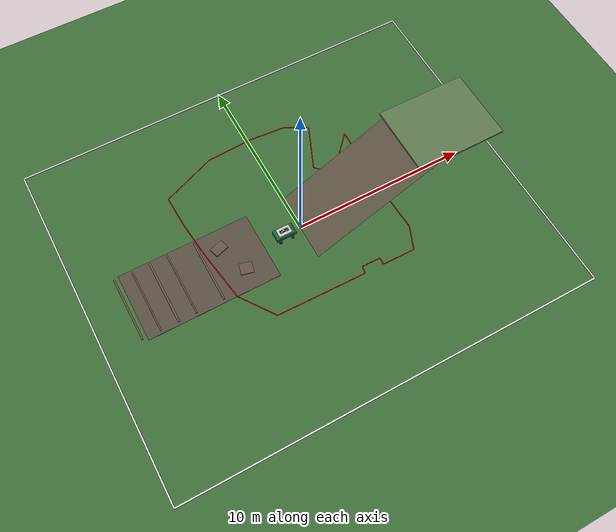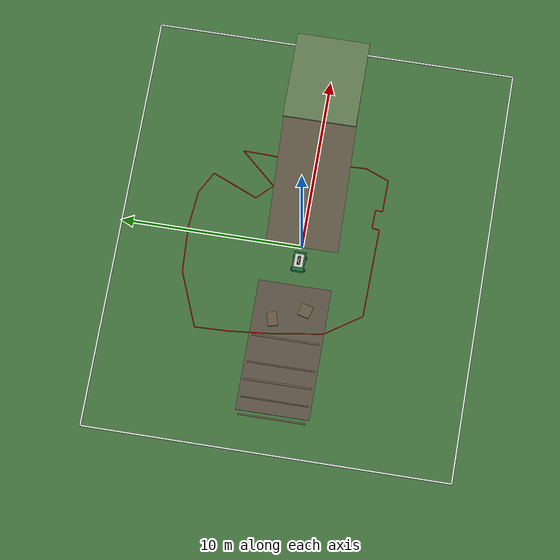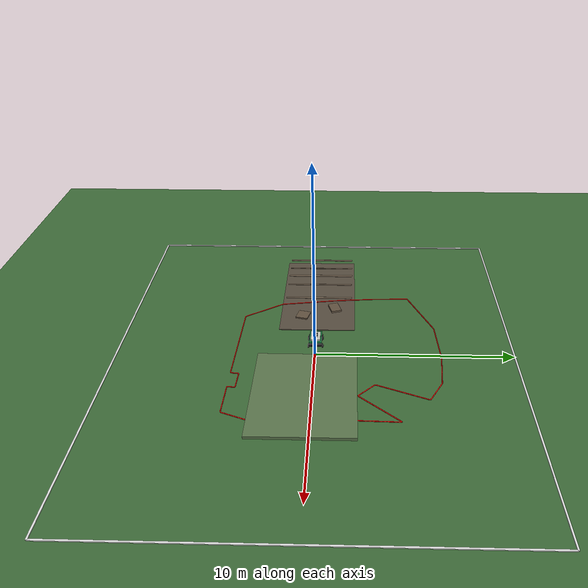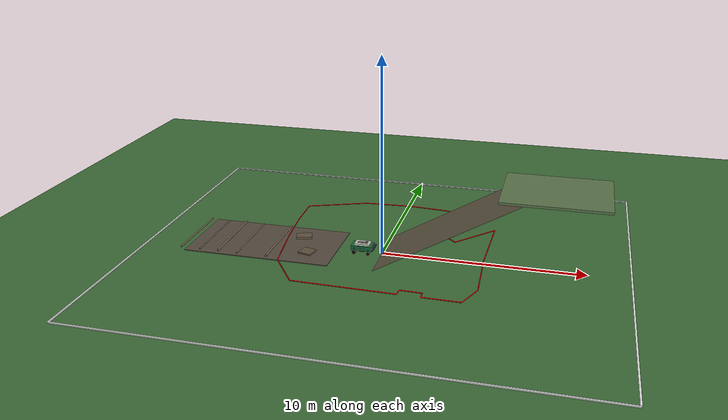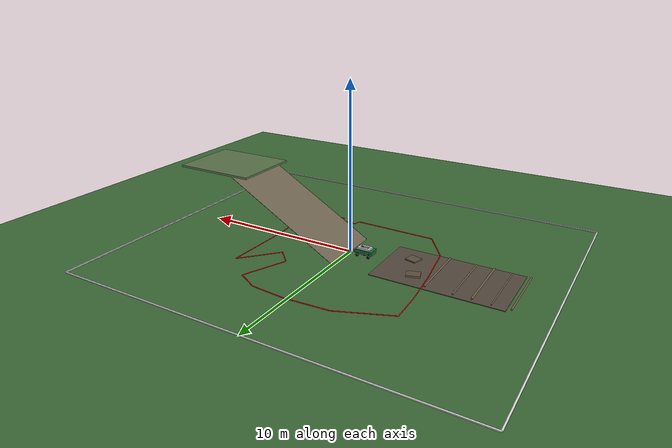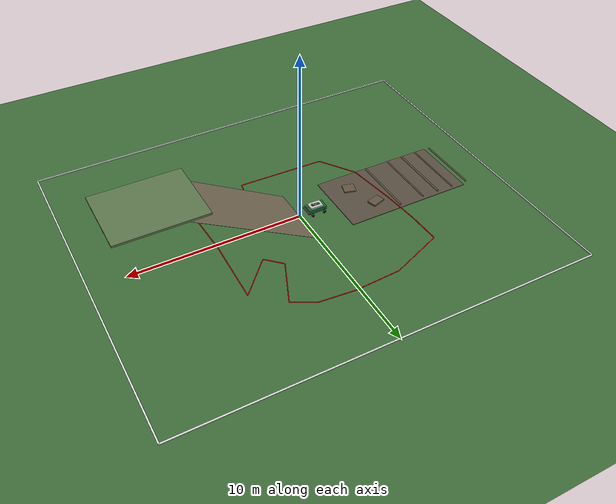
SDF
<?xml version="1.0"?>
<sdf version="1.6">
  <world name="mower_slope_bumpy">
    <gravity>0 0 -9.8</gravity>
    <magnetic_field>6e-06 2.3e-05 -4.2e-05</magnetic_field>
    <atmosphere type="adiabatic"/>

    <physics name="default_physics" default="0" type="ode">
      <max_step_size>0.001</max_step_size>
      <real_time_factor>1.0</real_time_factor>
      <real_time_update_rate>1000</real_time_update_rate>
    </physics>

    <scene>
      <ambient>0.65 0.65 0.65 1</ambient>
      <background>0.85 0.90 0.96 1</background>
      <shadows>true</shadows>
    </scene>

    <light name="sun" type="directional">
      <cast_shadows>true</cast_shadows>
      <pose>0 0 10 0 0 0</pose>
      <diffuse>1.0 1.0 1.0 1</diffuse>
      <specular>0.35 0.35 0.35 1</specular>
      <attenuation>
        <range>1000</range>
        <constant>0.9</constant>
        <linear>0.01</linear>
        <quadratic>0.001</quadratic>
      </attenuation>
      <direction>-0.5 0.1 -0.9</direction>
    </light>

    <model name="ground_plane">
      <static>true</static>
      <link name="link">
        <collision name="collision">
          <geometry>
            <plane>
              <normal>0 0 1</normal>
              <size>50 40</size>
            </plane>
          </geometry>
          <surface>
            <friction>
              <ode>
                <mu>1.2</mu>
                <mu2>1.2</mu2>
              </ode>
            </friction>
          </surface>
        </collision>
        <visual name="visual">
          <geometry>
            <plane>
              <normal>0 0 1</normal>
              <size>50 40</size>
            </plane>
          </geometry>
          <material>
            <ambient>0.24 0.42 0.22 1</ambient>
            <diffuse>0.24 0.42 0.22 1</diffuse>
          </material>
        </visual>
      </link>
    </model>

    <model name="bumpy_road">
      <static>true</static>
      <pose>-6 0 0 0 0 0</pose>
      <link name="road_base">
        <collision name="collision">
          <geometry>
            <box>
              <size>7.5 4.0 0.04</size>
            </box>
          </geometry>
        </collision>
        <visual name="visual">
          <geometry>
            <box>
              <size>7.5 4.0 0.04</size>
            </box>
          </geometry>
          <material>
            <ambient>0.34 0.30 0.25 1</ambient>
            <diffuse>0.34 0.30 0.25 1</diffuse>
          </material>
        </visual>
      </link>
      <link name="bump_01">
        <pose>-4.0 0 0.09 1.570796 0 0</pose>
        <collision name="collision">
          <geometry>
            <cylinder>
              <radius>0.045</radius>
              <length>3.7</length>
            </cylinder>
          </geometry>
        </collision>
        <visual name="visual">
          <geometry>
            <cylinder>
              <radius>0.045</radius>
              <length>3.7</length>
            </cylinder>
          </geometry>
          <material>
            <ambient>0.42 0.36 0.29 1</ambient>
            <diffuse>0.42 0.36 0.29 1</diffuse>
          </material>
        </visual>
      </link>
      <link name="bump_02">
        <pose>-3.0 0 0.07 1.570796 0 0</pose>
        <collision name="collision">
          <geometry>
            <cylinder>
              <radius>0.035</radius>
              <length>3.7</length>
            </cylinder>
          </geometry>
        </collision>
        <visual name="visual">
          <geometry>
            <cylinder>
              <radius>0.035</radius>
              <length>3.7</length>
            </cylinder>
          </geometry>
          <material>
            <ambient>0.42 0.36 0.29 1</ambient>
            <diffuse>0.42 0.36 0.29 1</diffuse>
          </material>
        </visual>
      </link>
      <link name="bump_03">
        <pose>-2.0 0 0.11 1.570796 0 0</pose>
        <collision name="collision">
          <geometry>
            <cylinder>
              <radius>0.055</radius>
              <length>3.7</length>
            </cylinder>
          </geometry>
        </collision>
        <visual name="visual">
          <geometry>
            <cylinder>
              <radius>0.055</radius>
              <length>3.7</length>
            </cylinder>
          </geometry>
          <material>
            <ambient>0.42 0.36 0.29 1</ambient>
            <diffuse>0.42 0.36 0.29 1</diffuse>
          </material>
        </visual>
      </link>
      <link name="bump_04">
        <pose>-1.0 0 0.08 1.570796 0 0</pose>
        <collision name="collision">
          <geometry>
            <cylinder>
              <radius>0.04</radius>
              <length>3.7</length>
            </cylinder>
          </geometry>
        </collision>
        <visual name="visual">
          <geometry>
            <cylinder>
              <radius>0.04</radius>
              <length>3.7</length>
            </cylinder>
          </geometry>
          <material>
            <ambient>0.42 0.36 0.29 1</ambient>
            <diffuse>0.42 0.36 0.29 1</diffuse>
          </material>
        </visual>
      </link>
      <link name="bump_05">
        <pose>0.55 0 0.10 1.570796 0 0</pose>
        <collision name="collision">
          <geometry>
            <cylinder>
              <radius>0.05</radius>
              <length>3.7</length>
            </cylinder>
          </geometry>
        </collision>
        <visual name="visual">
          <geometry>
            <cylinder>
              <radius>0.05</radius>
              <length>3.7</length>
            </cylinder>
          </geometry>
          <material>
            <ambient>0.42 0.36 0.29 1</ambient>
            <diffuse>0.42 0.36 0.29 1</diffuse>
          </material>
        </visual>
      </link>
      <link name="small_uneven_patch_left">
        <pose>1.6 0.9 0.075 0 0 0.3</pose>
        <collision name="collision">
          <geometry>
            <box>
              <size>0.8 0.55 0.11</size>
            </box>
          </geometry>
        </collision>
        <visual name="visual">
          <geometry>
            <box>
              <size>0.8 0.55 0.11</size>
            </box>
          </geometry>
          <material>
            <ambient>0.38 0.32 0.25 1</ambient>
            <diffuse>0.38 0.32 0.25 1</diffuse>
          </material>
        </visual>
      </link>
      <link name="small_uneven_patch_right">
        <pose>2.35 -0.8 0.06 0 0 -0.25</pose>
        <collision name="collision">
          <geometry>
            <box>
              <size>0.7 0.65 0.08</size>
            </box>
          </geometry>
        </collision>
        <visual name="visual">
          <geometry>
            <box>
              <size>0.7 0.65 0.08</size>
            </box>
          </geometry>
          <material>
            <ambient>0.38 0.32 0.25 1</ambient>
            <diffuse>0.38 0.32 0.25 1</diffuse>
          </material>
        </visual>
      </link>
    </model>

    <model name="thirty_degree_slope">
      <static>true</static>
      <pose>3.464 0 1.99 0 -0.523599 0</pose>
      <link name="ramp">
        <collision name="collision">
          <geometry>
            <box>
              <size>8.0 4.0 0.01</size>
            </box>
          </geometry>
          <surface>
            <friction>
              <ode>
                <mu>1.4</mu>
                <mu2>1.4</mu2>
              </ode>
            </friction>
          </surface>
        </collision>
        <visual name="visual">
          <geometry>
            <box>
              <size>8.0 4.0 0.01</size>
            </box>
          </geometry>
          <material>
            <ambient>0.43 0.39 0.31 1</ambient>
            <diffuse>0.43 0.39 0.31 1</diffuse>
          </material>
        </visual>
      </link>
    </model>

    <model name="slope_top_platform">
      <static>true</static>
      <pose>8.3 0 4.05 0 0 0</pose>
      <link name="platform">
        <collision name="collision">
          <geometry>
            <box>
              <size>5.0 4.0 0.12</size>
            </box>
          </geometry>
          <surface>
            <friction>
              <ode>
                <mu>1.4</mu>
                <mu2>1.4</mu2>
              </ode>
            </friction>
          </surface>
        </collision>
        <visual name="visual">
          <geometry>
            <box>
              <size>5.0 4.0 0.12</size>
            </box>
          </geometry>
          <material>
            <ambient>0.36 0.46 0.30 1</ambient>
            <diffuse>0.36 0.46 0.30 1</diffuse>
          </material>
        </visual>
      </link>
    </model>

    <model name="boundary">
      <static>true</static>
      <pose>0 0 0.025 0 0 0</pose>
      <link name="north">
        <pose>0 10 0 0 0 0</pose>
        <collision name="collision">
          <geometry>
            <box>
              <size>24 0.08 0.05</size>
            </box>
          </geometry>
        </collision>
        <visual name="visual">
          <geometry>
            <box>
              <size>24 0.08 0.05</size>
            </box>
          </geometry>
          <material>
            <ambient>0.9 0.9 0.9 1</ambient>
            <diffuse>0.9 0.9 0.9 1</diffuse>
          </material>
        </visual>
      </link>
      <link name="south">
        <pose>0 -10 0 0 0 0</pose>
        <collision name="collision">
          <geometry>
            <box>
              <size>24 0.08 0.05</size>
            </box>
          </geometry>
        </collision>
        <visual name="visual">
          <geometry>
            <box>
              <size>24 0.08 0.05</size>
            </box>
          </geometry>
          <material>
            <ambient>0.9 0.9 0.9 1</ambient>
            <diffuse>0.9 0.9 0.9 1</diffuse>
          </material>
        </visual>
      </link>
      <link name="east">
        <pose>12 0 0 0 0 0</pose>
        <collision name="collision">
          <geometry>
            <box>
              <size>0.08 20 0.05</size>
            </box>
          </geometry>
        </collision>
        <visual name="visual">
          <geometry>
            <box>
              <size>0.08 20 0.05</size>
            </box>
          </geometry>
          <material>
            <ambient>0.9 0.9 0.9 1</ambient>
            <diffuse>0.9 0.9 0.9 1</diffuse>
          </material>
        </visual>
      </link>
      <link name="west">
        <pose>-12 0 0 0 0 0</pose>
        <collision name="collision">
          <geometry>
            <box>
              <size>0.08 20 0.05</size>
            </box>
          </geometry>
        </collision>
        <visual name="visual">
          <geometry>
            <box>
              <size>0.08 20 0.05</size>
            </box>
          </geometry>
          <material>
            <ambient>0.9 0.9 0.9 1</ambient>
            <diffuse>0.9 0.9 0.9 1</diffuse>
          </material>
        </visual>
      </link>
    </model>

    <include>
      <uri>model://boundary_points</uri>
      <pose>0 0 0 0 0 0</pose>
    </include>

    <include>
      <uri>model://ackermann_4wd_robot</uri>
      <pose>-1.0 0 0.14 0 0 0</pose>
    </include>
  </world>
</sdf>

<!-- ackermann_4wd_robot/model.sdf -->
<sdf version="1.6">
  <model name="ackermann_4wd_robot">
    <pose>0 0 0 0 0 0</pose>

    <link name="base_link">
      <inertial>
        <pose>-0.15 0 0 0 0 0</pose>
        <mass>36.0</mass>
        <inertia>
          <ixx>1.45</ixx>
          <ixy>0.0</ixy>
          <ixz>0.0</ixz>
          <iyy>2.10</iyy>
          <iyz>0.0</iyz>
          <izz>2.60</izz>
        </inertia>
      </inertial>
      <collision name="body_collision">
        <pose>0 0 0.14 0 0 0</pose>
        <geometry>
          <box>
            <size>1.08 0.62 0.24</size>
          </box>
        </geometry>
        <surface>
          <friction>
            <ode>
              <mu>1.0</mu>
              <mu2>1.0</mu2>
            </ode>
          </friction>
        </surface>
      </collision>
      <visual name="body_visual">
        <pose>0 0 0.14 0 0 0</pose>
        <geometry>
          <box>
            <size>1.08 0.62 0.24</size>
          </box>
        </geometry>
        <material>
          <ambient>0.05 0.26 0.16 1</ambient>
          <diffuse>0.08 0.42 0.22 1</diffuse>
          <specular>0.10 0.10 0.10 1</specular>
        </material>
      </visual>
      <visual name="top_cover">
        <pose>0.02 0 0.31 0 0 0</pose>
        <geometry>
          <box>
            <size>0.76 0.48 0.10</size>
          </box>
        </geometry>
        <material>
          <ambient>0.76 0.78 0.72 1</ambient>
          <diffuse>0.76 0.78 0.72 1</diffuse>
        </material>
      </visual>
      <visual name="ackermann_top_label">
        <pose>0.02 0 0.365 0 0 0</pose>
        <geometry>
          <box>
            <size>0.50 0.18 0.012</size>
          </box>
        </geometry>
        <material>
          <ambient>0.02 0.02 0.02 1</ambient>
          <diffuse>0.02 0.02 0.02 1</diffuse>
        </material>
      </visual>
      <visual name="ackermann_top_mark_left">
        <pose>-0.075 0.0 0.374 0 0 0.50</pose>
        <geometry>
          <box>
            <size>0.22 0.035 0.012</size>
          </box>
        </geometry>
        <material>
          <ambient>0.95 0.95 0.95 1</ambient>
          <diffuse>0.95 0.95 0.95 1</diffuse>
        </material>
      </visual>
      <visual name="ackermann_top_mark_right">
        <pose>0.075 0.0 0.374 0 0 -0.50</pose>
        <geometry>
          <box>
            <size>0.22 0.035 0.012</size>
          </box>
        </geometry>
        <material>
          <ambient>0.95 0.95 0.95 1</ambient>
          <diffuse>0.95 0.95 0.95 1</diffuse>
        </material>
      </visual>
      <visual name="ackermann_top_mark_crossbar">
        <pose>0.0 0.0 0.376 0 0 0</pose>
        <geometry>
          <box>
            <size>0.13 0.030 0.012</size>
          </box>
        </geometry>
        <material>
          <ambient>0.95 0.95 0.95 1</ambient>
          <diffuse>0.95 0.95 0.95 1</diffuse>
        </material>
      </visual>
      <visual name="left_ackermann_badge">
        <pose>0.04 0.315 0.18 1.5708 0 0</pose>
        <geometry>
          <box>
            <size>0.36 0.012 0.08</size>
          </box>
        </geometry>
        <material>
          <ambient>0.02 0.02 0.02 1</ambient>
          <diffuse>0.02 0.02 0.02 1</diffuse>
        </material>
      </visual>
      <visual name="right_ackermann_badge">
        <pose>0.04 -0.315 0.18 1.5708 0 0</pose>
        <geometry>
          <box>
            <size>0.36 0.012 0.08</size>
          </box>
        </geometry>
        <material>
          <ambient>0.02 0.02 0.02 1</ambient>
          <diffuse>0.02 0.02 0.02 1</diffuse>
        </material>
      </visual>
      <visual name="front_bumper">
        <pose>0.58 0 0.14 0 0 0</pose>
        <geometry>
          <box>
            <size>0.08 0.70 0.12</size>
          </box>
        </geometry>
        <material>
          <ambient>0.04 0.04 0.04 1</ambient>
          <diffuse>0.06 0.06 0.06 1</diffuse>
        </material>
      </visual>
      <visual name="cutting_disc">
        <pose>-0.02 0 -0.035 0 0 0</pose>
        <geometry>
          <cylinder>
            <radius>0.25</radius>
            <length>0.025</length>
          </cylinder>
        </geometry>
        <material>
          <ambient>0.14 0.14 0.14 1</ambient>
          <diffuse>0.16 0.16 0.16 1</diffuse>
        </material>
      </visual>
    </link>

    <link name="front_left_steer_link">
      <pose>0.36 0.32 0.02 0 0 0</pose>
      <inertial>
        <mass>0.7</mass>
        <inertia>
          <ixx>0.002</ixx>
          <ixy>0.0</ixy>
          <ixz>0.0</ixz>
          <iyy>0.002</iyy>
          <iyz>0.0</iyz>
          <izz>0.002</izz>
        </inertia>
      </inertial>
      <visual name="upright">
        <geometry>
          <box>
            <size>0.08 0.08 0.16</size>
          </box>
        </geometry>
        <material>
          <ambient>0.18 0.18 0.18 1</ambient>
          <diffuse>0.22 0.22 0.22 1</diffuse>
        </material>
      </visual>
    </link>

    <link name="front_right_steer_link">
      <pose>0.36 -0.32 0.02 0 0 0</pose>
      <inertial>
        <mass>0.7</mass>
        <inertia>
          <ixx>0.002</ixx>
          <ixy>0.0</ixy>
          <ixz>0.0</ixz>
          <iyy>0.002</iyy>
          <iyz>0.0</iyz>
          <izz>0.002</izz>
        </inertia>
      </inertial>
      <visual name="upright">
        <geometry>
          <box>
            <size>0.08 0.08 0.16</size>
          </box>
        </geometry>
        <material>
          <ambient>0.18 0.18 0.18 1</ambient>
          <diffuse>0.22 0.22 0.22 1</diffuse>
        </material>
      </visual>
    </link>

    <link name="front_left_wheel">
      <pose>0.36 0.36 -0.055 0 0 0</pose>
      <inertial>
        <mass>1.6</mass>
        <inertia>
          <ixx>0.008</ixx>
          <ixy>0.0</ixy>
          <ixz>0.0</ixz>
          <iyy>0.008</iyy>
          <iyz>0.0</iyz>
          <izz>0.012</izz>
        </inertia>
      </inertial>
      <collision name="collision">
        <pose>0 0 0 -1.5708 0 0</pose>
        <geometry>
          <cylinder>
            <radius>0.085</radius>
            <length>0.08</length>
          </cylinder>
        </geometry>
        <surface>
          <friction>
            <ode>
              <mu>1.5</mu>
              <mu2>1.5</mu2>
              <slip1>0.0</slip1>
              <slip2>0.0</slip2>
            </ode>
          </friction>
        </surface>
      </collision>
      <visual name="visual">
        <pose>0 0 0 -1.5708 0 0</pose>
        <geometry>
          <cylinder>
            <radius>0.085</radius>
            <length>0.08</length>
          </cylinder>
        </geometry>
        <material>
          <ambient>0.02 0.02 0.02 1</ambient>
          <diffuse>0.02 0.02 0.02 1</diffuse>
        </material>
      </visual>
    </link>

    <link name="front_right_wheel">
      <pose>0.36 -0.36 -0.055 0 0 0</pose>
      <inertial>
        <mass>1.6</mass>
        <inertia>
          <ixx>0.008</ixx>
          <ixy>0.0</ixy>
          <ixz>0.0</ixz>
          <iyy>0.008</iyy>
          <iyz>0.0</iyz>
          <izz>0.012</izz>
        </inertia>
      </inertial>
      <collision name="collision">
        <pose>0 0 0 -1.5708 0 0</pose>
        <geometry>
          <cylinder>
            <radius>0.085</radius>
            <length>0.08</length>
          </cylinder>
        </geometry>
        <surface>
          <friction>
            <ode>
              <mu>1.5</mu>
              <mu2>1.5</mu2>
              <slip1>0.0</slip1>
              <slip2>0.0</slip2>
            </ode>
          </friction>
        </surface>
      </collision>
      <visual name="visual">
        <pose>0 0 0 -1.5708 0 0</pose>
        <geometry>
          <cylinder>
            <radius>0.085</radius>
            <length>0.08</length>
          </cylinder>
        </geometry>
        <material>
          <ambient>0.02 0.02 0.02 1</ambient>
          <diffuse>0.02 0.02 0.02 1</diffuse>
        </material>
      </visual>
    </link>

    <link name="rear_left_suspension_link">
      <pose>-0.36 0.36 -0.02 0 0 0</pose>
      <inertial>
        <mass>0.8</mass>
        <inertia>
          <ixx>0.003</ixx>
          <ixy>0.0</ixy>
          <ixz>0.0</ixz>
          <iyy>0.003</iyy>
          <iyz>0.0</iyz>
          <izz>0.003</izz>
        </inertia>
      </inertial>
      <visual name="suspension_upright">
        <pose>0 -0.03 0.08 0 0 0</pose>
        <geometry>
          <box>
            <size>0.08 0.05 0.18</size>
          </box>
        </geometry>
        <material>
          <ambient>0.18 0.18 0.18 1</ambient>
          <diffuse>0.22 0.22 0.22 1</diffuse>
        </material>
      </visual>
      <visual name="spring_body">
        <pose>0 -0.03 0.10 0 0 0</pose>
        <geometry>
          <cylinder>
            <radius>0.025</radius>
            <length>0.20</length>
          </cylinder>
        </geometry>
        <material>
          <ambient>0.08 0.08 0.08 1</ambient>
          <diffuse>0.10 0.10 0.10 1</diffuse>
        </material>
      </visual>
    </link>

    <link name="rear_right_suspension_link">
      <pose>-0.36 -0.36 -0.02 0 0 0</pose>
      <inertial>
        <mass>0.8</mass>
        <inertia>
          <ixx>0.003</ixx>
          <ixy>0.0</ixy>
          <ixz>0.0</ixz>
          <iyy>0.003</iyy>
          <iyz>0.0</iyz>
          <izz>0.003</izz>
        </inertia>
      </inertial>
      <visual name="suspension_upright">
        <pose>0 0.03 0.08 0 0 0</pose>
        <geometry>
          <box>
            <size>0.08 0.05 0.18</size>
          </box>
        </geometry>
        <material>
          <ambient>0.18 0.18 0.18 1</ambient>
          <diffuse>0.22 0.22 0.22 1</diffuse>
        </material>
      </visual>
      <visual name="spring_body">
        <pose>0 0.03 0.10 0 0 0</pose>
        <geometry>
          <cylinder>
            <radius>0.025</radius>
            <length>0.20</length>
          </cylinder>
        </geometry>
        <material>
          <ambient>0.08 0.08 0.08 1</ambient>
          <diffuse>0.10 0.10 0.10 1</diffuse>
        </material>
      </visual>
    </link>

    <link name="rear_left_wheel">
      <pose>-0.36 0.36 -0.04 0 0 0</pose>
      <inertial>
        <mass>1.6</mass>
        <inertia>
          <ixx>0.008</ixx>
          <ixy>0.0</ixy>
          <ixz>0.0</ixz>
          <iyy>0.008</iyy>
          <iyz>0.0</iyz>
          <izz>0.012</izz>
        </inertia>
      </inertial>
      <collision name="collision">
        <pose>0 0 0 -1.5708 0 0</pose>
        <geometry>
          <cylinder>
            <radius>0.10</radius>
            <length>0.08</length>
          </cylinder>
        </geometry>
        <surface>
          <friction>
            <ode>
              <mu>1.5</mu>
              <mu2>1.5</mu2>
              <slip1>0.0</slip1>
              <slip2>0.0</slip2>
            </ode>
          </friction>
        </surface>
      </collision>
      <visual name="visual">
        <pose>0 0 0 -1.5708 0 0</pose>
        <geometry>
          <cylinder>
            <radius>0.10</radius>
            <length>0.08</length>
          </cylinder>
        </geometry>
        <material>
          <ambient>0.02 0.02 0.02 1</ambient>
          <diffuse>0.02 0.02 0.02 1</diffuse>
        </material>
      </visual>
    </link>

    <link name="rear_right_wheel">
      <pose>-0.36 -0.36 -0.04 0 0 0</pose>
      <inertial>
        <mass>1.6</mass>
        <inertia>
          <ixx>0.008</ixx>
          <ixy>0.0</ixy>
          <ixz>0.0</ixz>
          <iyy>0.008</iyy>
          <iyz>0.0</iyz>
          <izz>0.012</izz>
        </inertia>
      </inertial>
      <collision name="collision">
        <pose>0 0 0 -1.5708 0 0</pose>
        <geometry>
          <cylinder>
            <radius>0.10</radius>
            <length>0.08</length>
          </cylinder>
        </geometry>
        <surface>
          <friction>
            <ode>
              <mu>1.5</mu>
              <mu2>1.5</mu2>
              <slip1>0.0</slip1>
              <slip2>0.0</slip2>
            </ode>
          </friction>
        </surface>
      </collision>
      <visual name="visual">
        <pose>0 0 0 -1.5708 0 0</pose>
        <geometry>
          <cylinder>
            <radius>0.10</radius>
            <length>0.08</length>
          </cylinder>
        </geometry>
        <material>
          <ambient>0.02 0.02 0.02 1</ambient>
          <diffuse>0.02 0.02 0.02 1</diffuse>
        </material>
      </visual>
    </link>

    <link name="camera_link">
      <pose>0.50 0.0 0.30 0 0 0</pose>
      <inertial>
        <mass>0.08</mass>
        <inertia>
          <ixx>0.0002</ixx>
          <ixy>0.0</ixy>
          <ixz>0.0</ixz>
          <iyy>0.0002</iyy>
          <iyz>0.0</iyz>
          <izz>0.0002</izz>
        </inertia>
      </inertial>
      <visual name="camera_housing">
        <geometry>
          <box>
            <size>0.05 0.04 0.03</size>
          </box>
        </geometry>
        <material>
          <ambient>0.10 0.10 0.10 1</ambient>
          <diffuse>0.12 0.12 0.12 1</diffuse>
        </material>
      </visual>
      <sensor type="ray" name="front_tof">
        <always_on>true</always_on>
        <update_rate>20</update_rate>
        <visualize>false</visualize>
        <ray>
          <scan>
            <horizontal>
              <samples>100</samples>
              <resolution>1.0</resolution>
              <min_angle>-0.785</min_angle>
              <max_angle>0.785</max_angle>
            </horizontal>
            <vertical>
              <samples>80</samples>
              <resolution>1.0</resolution>
              <min_angle>-0.611</min_angle>
              <max_angle>0.611</max_angle>
            </vertical>
          </scan>
          <range>
            <min>0.05</min>
            <max>2.5</max>
            <resolution>0.05</resolution>
          </range>
        </ray>
        <plugin name="front_tof_controller" filename="libgazebo_ros_ray_sensor.so">
          <ros>
            <namespace>/mower_tof</namespace>
            <remapping>~/out:=points</remapping>
          </ros>
          <output_type>sensor_msgs/PointCloud2</output_type>
          <frame_name>camera_link</frame_name>
        </plugin>
      </sensor>
    </link>

    <link name="lidar_link">
      <pose>0.23 0.0 0.42 0 0.0872665 0</pose>
      <inertial>
        <mass>0.18</mass>
        <inertia>
          <ixx>0.0003</ixx>
          <ixy>0.0</ixy>
          <ixz>0.0</ixz>
          <iyy>0.0003</iyy>
          <iyz>0.0</iyz>
          <izz>0.0003</izz>
        </inertia>
      </inertial>
      <visual name="lidar_housing">
        <geometry>
          <cylinder>
            <radius>0.045</radius>
            <length>0.04</length>
          </cylinder>
        </geometry>
        <material>
          <ambient>0.02 0.02 0.02 1</ambient>
          <diffuse>0.03 0.03 0.03 1</diffuse>
        </material>
      </visual>
      <sensor type="ray" name="front_lidar">
        <always_on>true</always_on>
        <update_rate>10</update_rate>
        <visualize>false</visualize>
        <ray>
          <scan>
            <horizontal>
              <samples>720</samples>
              <resolution>1.0</resolution>
              <min_angle>-3.14159</min_angle>
              <max_angle>3.14159</max_angle>
            </horizontal>
            <vertical>
              <samples>16</samples>
              <resolution>1.0</resolution>
              <min_angle>0.0</min_angle>
              <max_angle>0.3</max_angle>
            </vertical>
          </scan>
          <range>
            <min>0.10</min>
            <max>12.0</max>
            <resolution>0.01</resolution>
          </range>
          <noise>
            <type>gaussian</type>
            <mean>0.0</mean>
            <stddev>0.01</stddev>
          </noise>
        </ray>
        <plugin name="front_lidar_controller" filename="libgazebo_ros_ray_sensor.so">
          <ros>
            <namespace>/</namespace>
            <remapping>~/out:=sensor_lidar</remapping>
          </ros>
          <output_type>sensor_msgs/PointCloud2</output_type>
          <frame_name>lidar_link</frame_name>
        </plugin>
      </sensor>
    </link>

    <joint name="front_left_steer_joint" type="revolute">
      <parent>base_link</parent>
      <child>front_left_steer_link</child>
      <axis>
        <xyz>0 0 1</xyz>
        <limit>
          <lower>-1.57</lower>
          <upper>1.57</upper>
        </limit>
        <dynamics>
          <damping>0.4</damping>
        </dynamics>
      </axis>
    </joint>
    <joint name="front_right_steer_joint" type="revolute">
      <parent>base_link</parent>
      <child>front_right_steer_link</child>
      <axis>
        <xyz>0 0 1</xyz>
        <limit>
          <lower>-1.57</lower>
          <upper>1.57</upper>
        </limit>
        <dynamics>
          <damping>0.4</damping>
        </dynamics>
      </axis>
    </joint>
    <joint name="front_left_wheel_joint" type="revolute">
      <parent>front_left_steer_link</parent>
      <child>front_left_wheel</child>
      <axis>
        <xyz>0 1 0</xyz>
        <limit>
          <lower>-1e16</lower>
          <upper>1e16</upper>
        </limit>
      </axis>
    </joint>
    <joint name="front_right_wheel_joint" type="revolute">
      <parent>front_right_steer_link</parent>
      <child>front_right_wheel</child>
      <axis>
        <xyz>0 1 0</xyz>
        <limit>
          <lower>-1e16</lower>
          <upper>1e16</upper>
        </limit>
      </axis>
    </joint>
    <joint name="rear_left_suspension_joint" type="prismatic">
      <parent>base_link</parent>
      <child>rear_left_suspension_link</child>
      <axis>
        <xyz>0 0 1</xyz>
        <use_parent_model_frame>true</use_parent_model_frame>
        <limit>
          <lower>-0.04</lower>
          <upper>0.03</upper>
        </limit>
        <dynamics>
          <damping>180.0</damping>
          <spring_reference>0.0</spring_reference>
          <spring_stiffness>8000.0</spring_stiffness>
        </dynamics>
      </axis>
    </joint>
    <joint name="rear_right_suspension_joint" type="prismatic">
      <parent>base_link</parent>
      <child>rear_right_suspension_link</child>
      <axis>
        <xyz>0 0 1</xyz>
        <use_parent_model_frame>true</use_parent_model_frame>
        <limit>
          <lower>-0.04</lower>
          <upper>0.03</upper>
        </limit>
        <dynamics>
          <damping>180.0</damping>
          <spring_reference>0.0</spring_reference>
          <spring_stiffness>8000.0</spring_stiffness>
        </dynamics>
      </axis>
    </joint>
    <joint name="rear_left_wheel_joint" type="revolute">
      <parent>rear_left_suspension_link</parent>
      <child>rear_left_wheel</child>
      <axis>
        <xyz>0 1 0</xyz>
        <limit>
          <lower>-1e16</lower>
          <upper>1e16</upper>
        </limit>
      </axis>
    </joint>
    <joint name="rear_right_wheel_joint" type="revolute">
      <parent>rear_right_suspension_link</parent>
      <child>rear_right_wheel</child>
      <axis>
        <xyz>0 1 0</xyz>
        <limit>
          <lower>-1e16</lower>
          <upper>1e16</upper>
        </limit>
      </axis>
    </joint>
    <joint name="camera_joint" type="fixed">
      <parent>base_link</parent>
      <child>camera_link</child>
    </joint>
    <joint name="lidar_joint" type="fixed">
      <parent>base_link</parent>
      <child>lidar_link</child>
    </joint>

    <plugin name="ackermann_4wd_drive" filename="libackermann_4wd_drive_plugin.so">
      <ros>
        <namespace>/</namespace>
      </ros>
      <cmd_vel_topic>cmd_vel</cmd_vel_topic>
      <odom_topic>odom</odom_topic>
      <wheel_velocity_cmd_topic>wheel_velocity_cmds</wheel_velocity_cmd_topic>
      <odom_frame>odom</odom_frame>
      <base_frame>base_link</base_frame>
      <wheel_base>0.72</wheel_base>
      <wheel_track>0.72</wheel_track>
      <front_wheel_radius>0.085</front_wheel_radius>
      <rear_wheel_radius>0.10</rear_wheel_radius>
      <rear_axle_to_base>0.36</rear_axle_to_base>
      <max_steer_angle>1.4</max_steer_angle>
      <max_wheel_torque>8.0</max_wheel_torque>
      <max_wheel_acceleration>8.0</max_wheel_acceleration>
      <max_steer_rate>2.0</max_steer_rate>
      <max_steer_torque>12.0</max_steer_torque>
      <steer_position_gain>6.0</steer_position_gain>
      <command_timeout>1.0</command_timeout>
      <publish_odom_tf>true</publish_odom_tf>
    </plugin>
  </model>
</sdf>
